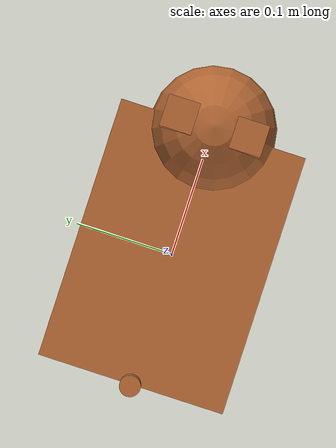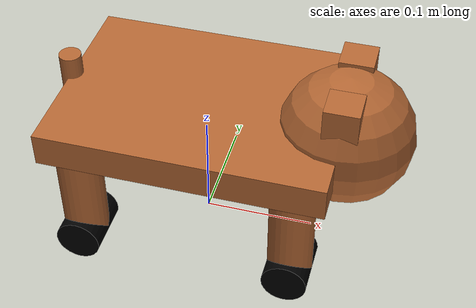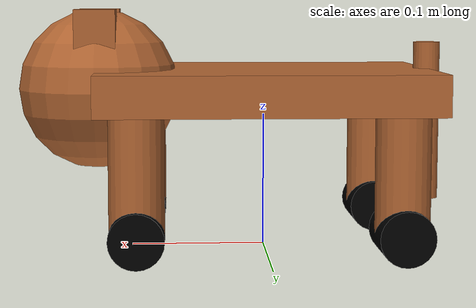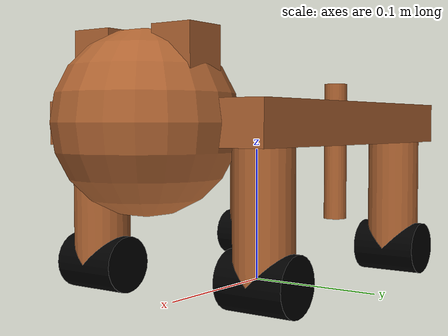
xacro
<?xml version="1.0"?>
<robot name="robot" xmlns:xacro="http://www.ros.org/wiki/xacro">
    <xacro:property name="body_width" value="0.18"/>
    <xacro:property name="body_length" value="0.25"/>
    <xacro:property name="body_height" value="0.03"/>

    <xacro:property name="head_radius" value="0.06"/>
    <xacro:property name="ear_size" value="0.03"/>

    <xacro:property name="leg_radius" value="0.02"/>
    <xacro:property name="leg_length" value="0.10"/>

    <xacro:property name="wheel_radius" value="0.02"/>

    <xacro:property name="mass_body" value="1.0"/>
    <xacro:property name="mass_leg" value="0.2"/>
    <xacro:property name="mass_head" value="0.4"/>
    <xacro:property name="mass_ear" value="0.05"/>
    <xacro:property name="mass_wheel" value="0.1"/>

    <material name="Brown">
        <color rgba="0.7 0.4 0.2 1"/>
    </material>

    <material name="Black">
        <color rgba="0.0 0.0 0.0 1"/>
    </material>

    <!-- BASE LINK -->
    <link name="base_footprint"/>
    <link name="base_link"/>

    <joint name="base_joint" type="fixed">
        <parent link="base_footprint"/>
        <child link="base_link"/>
        <origin xyz="0 0 0.02" rpy="0 0 0"/>
    </joint>

    <!-- BODY -->

    <link name="body">
        <visual>
            <origin xyz="0 0 0.1"/>
            <geometry>
                <box size="${body_length} ${body_width} ${body_height}"/>
            </geometry>
            <material name="Brown"/>
        </visual>

        <collision>
            <origin xyz="0 0 ${body_height/2}"/>
            <geometry>
                <box size="${body_length} ${body_width} ${body_height}"/>
            </geometry>
        </collision>

        <inertial>
            <origin xyz="0 0 ${body_height/2}"/>
            <mass value="${mass_body}"/>
            <inertia
                ixx="${mass_body * (body_width*body_width + body_height*body_height) / 12}"
                iyy="${mass_body * (body_length*body_length + body_height*body_height) / 12}"
                izz="${mass_body * (body_length*body_length + body_width*body_width) / 12}"
                ixy="0" ixz="0" iyz="0"/>
        </inertial>
    </link>

    <joint name="body_joint" type="fixed">
        <parent link="base_link"/>
        <child link="body"/>
    </joint>

    <!-- HEAD -->

    <link name="head">
        <visual>
            <origin xyz="0 0 0"/>
            <geometry>
                <sphere radius="${head_radius}"/>
            </geometry>
            <material name="Brown"/>
        </visual>

        <collision>
            <geometry>
                <sphere radius="${head_radius}"/>
            </geometry>
        </collision>

        <inertial>
            <mass value="${mass_head}"/>
            <origin xyz="0 0 0"/>
            <inertia ixx="0.005" iyy="0.005" izz="0.005" ixy="0" ixz="0" iyz="0"/>
        </inertial>
    </link>

    <joint name="head_joint" type="fixed">
        <parent link="body"/>
        <child link="head"/>
        <origin xyz="${body_length/2} 0 ${0.1}"/>
    </joint>

    <!-- EARS -->

    <xacro:macro name="ear" params="prefix side">
        <link name="${prefix}">
            <visual>
                <geometry>
                    <box size="${ear_size} ${ear_size} ${ear_size}"/>
                </geometry>
                <material name="Brown"/>
            </visual>

            <collision>
                <geometry>
                    <box size="${ear_size} ${ear_size} ${ear_size}"/>
                </geometry>
            </collision>

            <inertial>
                <mass value="${mass_ear}"/>
                <origin xyz="0 0 0"/>
                <inertia ixx="0.0001" iyy="0.0001" izz="0.0001" ixy="0" ixz="0" iyz="0"/>
            </inertial>
        </link>

        <joint name="${prefix}_joint" type="fixed">
            <parent link="head"/>
            <child link="${prefix}"/>
            <origin xyz="0 ${side*head_radius*0.55} ${head_radius*0.75}"/>
        </joint>
    </xacro:macro>

    <xacro:ear prefix="left_ear" side="1"/>
    <xacro:ear prefix="right_ear" side="-1"/>

    <!-- LEGS -->

    <xacro:macro name="leg" params="name x y">
        <link name="${name}">
            <visual>
                <geometry>
                    <cylinder radius="${leg_radius}" length="${leg_length}"/>
                </geometry>
                <material name="Brown"/>
            </visual>

            <collision>
                <geometry>
                    <cylinder radius="${leg_radius}" length="${leg_length}"/>
                </geometry>
            </collision>

            <inertial>
                <mass value="${mass_leg}"/>
                <origin xyz="0 0 0"/>
                <inertia ixx="0.001" iyy="0.001" izz="0.001" ixy="0" ixz="0" iyz="0"/>
            </inertial>
        </link>

        <joint name="${name}_joint" type="fixed">
            <parent link="body"/>
            <child link="${name}"/>
            <origin xyz="${x} ${y} ${leg_length/2}"/>
        </joint>
    </xacro:macro>

    <xacro:leg name="front_left_leg"  x="${ body_length/2 - 0.03 }" y="0.07"/>
    <xacro:leg name="front_right_leg" x="${ body_length/2 - 0.03 }" y="-0.07"/>

    <xacro:leg name="rear_left_leg"   x="${ -body_length/2 + 0.03 }" y="0.07"/>
    <xacro:leg name="rear_right_leg"  x="${ -body_length/2 + 0.03 }" y="-0.07"/>

    <!-- WHEELS -->

    <xacro:macro name="wheel" params="name parent side_sign">
        <link name="${name}">
            <visual>
                <geometry>
                    <cylinder radius="${wheel_radius}" length="0.05"/>
                </geometry>
                <material name="Black"/>
            </visual>

            <collision>
                <geometry>
                    <sphere radius="${wheel_radius}"/>
                </geometry>
            </collision>

            <inertial>
                <mass value="${mass_wheel}"/>
                <origin xyz="0 0 0"/>
                <inertia ixx="0.0005" iyy="0.0005" izz="0.0005" ixy="0" ixz="0" iyz="0"/>
            </inertial>
        </link>

        <joint name="${name}_joint" type="continuous">
            <parent link="${parent}"/>
            <child link="${name}"/>
            <origin xyz="0 0 -0.05" rpy="${pi/2} 0 0"/>
            <axis xyz="0 0 ${side_sign}"/>
        </joint>

    </xacro:macro>

    <xacro:wheel name="front_left_wheel"   parent="front_left_leg"   side_sign="1"/>
    <xacro:wheel name="front_right_wheel"  parent="front_right_leg"  side_sign="-1"/>
    <xacro:wheel name="rear_left_wheel"    parent="rear_left_leg"    side_sign="1"/>
    <xacro:wheel name="rear_right_wheel"   parent="rear_right_leg"   side_sign="-1"/>

  <!-- TAIL -->
  <xacro:property name="tail_radius" value="0.01"/>
  <xacro:property name="tail_length" value="0.12"/>
  <xacro:property name="mass_tail" value="0.05"/>

  <link name="tail">
      <visual>
          <geometry>
              <cylinder radius="${tail_radius}" length="${tail_length}"/>
          </geometry>
          <material name="Brown"/>
          <origin xyz="0 0 ${tail_length/2}" rpy="0 0 0"/>
      </visual>

      <collision>
          <geometry>
              <cylinder radius="${tail_radius}" length="${tail_length}"/>
          </geometry>
          <origin xyz="0 0 ${tail_length/2}" rpy="0 0 0"/>
      </collision>

      <inertial>
          <mass value="${mass_tail}"/>
          <origin xyz="0 0 ${tail_length/2}" rpy="0 0 0"/>
          <inertia ixx="0.00001" iyy="0.00001" izz="0.00001" ixy="0" ixz="0" iyz="0"/>
      </inertial>
  </link>

  <joint name="tail_joint" type="continuous">
      <parent link="body"/>
      <child link="tail"/>
      <origin xyz="${-body_length/2} 0 ${body_height/2}" rpy="0 0 0"/>
      <axis xyz="0 0 1"/>
  </joint>

    <!-- GAZEBO PLUGINS -->
    <gazebo>
        <plugin filename="gz-sim-joint-state-publisher-system"
                name="gz::sim::systems::JointStatePublisher">
        </plugin>

        <plugin filename="gz-sim-diff-drive-system"
                name="gz::sim::systems::DiffDrive">
            <left_joint>rear_left_wheel_joint</left_joint>
            <right_joint>rear_right_wheel_joint</right_joint>
            <child_frame_id>robot/base_footprint</child_frame_id>
            <odom_frame>robot/odom</odom_frame>
            <wheel_separation>0.14</wheel_separation>
            <wheel_radius>${wheel_radius}</wheel_radius>
            <odom_publish_frequency>10</odom_publish_frequency>
        </plugin>
    </gazebo>

</robot>
